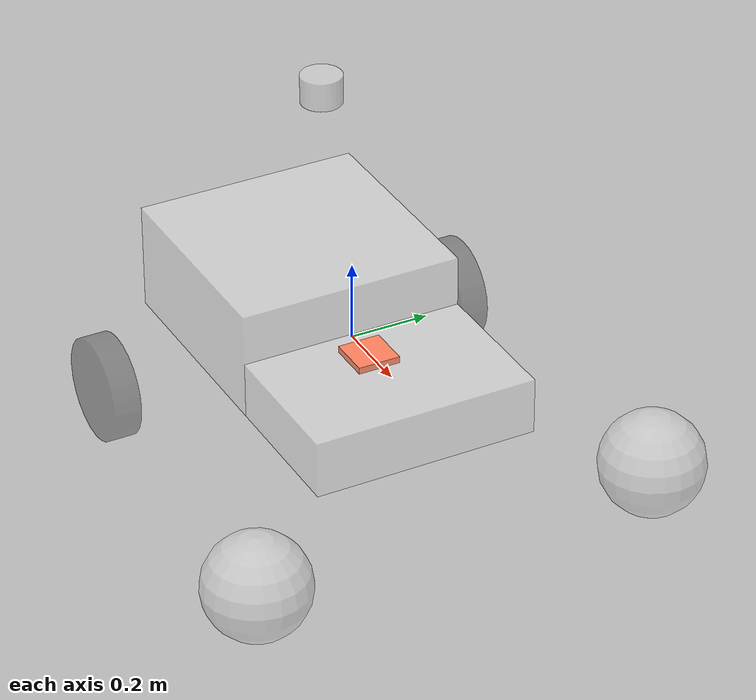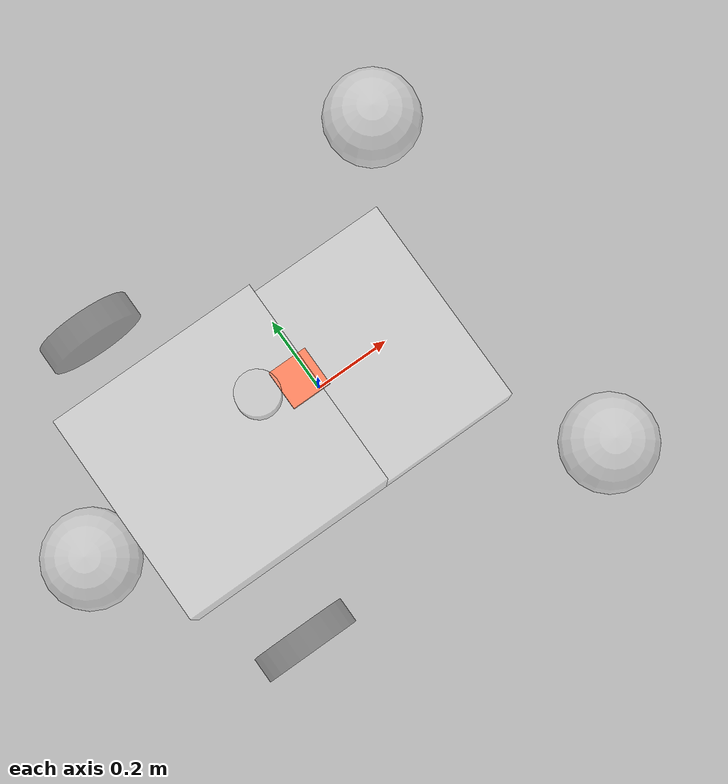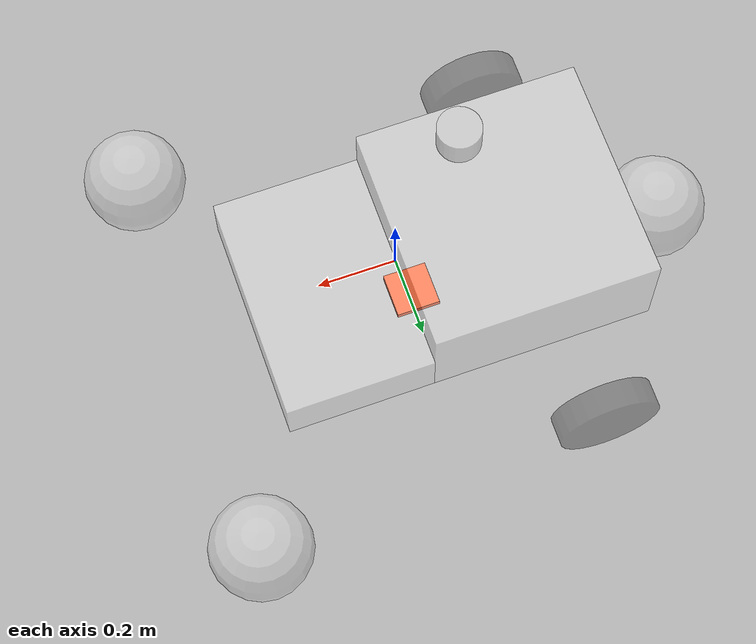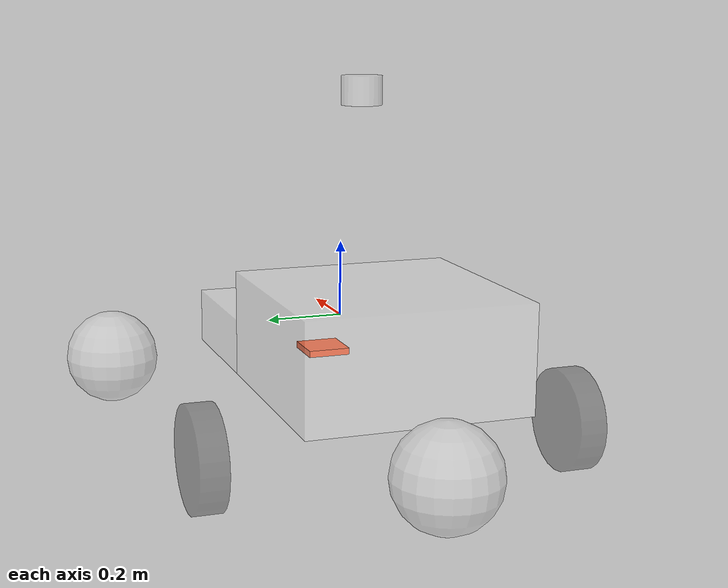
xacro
<?xml version="1.0"?>
<robot xmlns:xacro="http://www.ros.org/wiki/xacro" name="esda">

    <xacro:include filename="util/inertial_macros.xacro"/>

    <xacro:include filename="util/materials.xacro"/>

    <xacro:include filename="esda_core.xacro"/>

    <xacro:include filename="wheels.xacro"/>

    <xacro:include filename="sensors/lidar.xacro"/>

    <xacro:include filename="sensors/piksi.xacro"/>

    <xacro:include filename="sensors/camera.xacro"/>

    <gazebo>
        <plugin name="diff_drive" filename="libgazebo_ros_diff_drive.so">

            <!-- Wheel Information -->
            <left_joint>left_drive_wheel_joint</left_joint>
            <right_joint>right_drive_wheel_joint</right_joint>
            <wheel_separation>0.958</wheel_separation>
            <wheel_diameter>0.265</wheel_diameter>

            <!-- Limits -->
            <max_wheel_torque>100</max_wheel_torque>
            <max_wheel_acceleration>10.0</max_wheel_acceleration>

            <!-- Output -->
            <odometry_frame>odom</odometry_frame>
            <robot_base_frame>base_link</robot_base_frame>

            <publish_odom>true</publish_odom>
            <publish_odom_tf>true</publish_odom_tf>
            <publish_wheel_tf>true</publish_wheel_tf>

        </plugin>
    </gazebo>

</robot>

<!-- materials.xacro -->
<robot xmlns:xacro="http://www.ros.org/wiki/xacro">
    <!-- RANDOM COLOURS FOR DEBUG PURPOSES -->
    <material name="white">
        <color rgba="1 1 1 0.3"/>
    </material>

    <material name="light_grey">
        <color rgba="0.9 0.9 0.9 0.4"/>
    </material>

    <material name="black">
        <color rgba="0.2 0.2 0.2 0.4"/>
    </material>

    <material name="blue">
        <color rgba="0.2 0.2 1 1"/>
    </material>

    <material name="orange">
        <color rgba="1 0.3 0.1 1"/>
    </material>

</robot>

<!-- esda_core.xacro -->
<robot xmlns:xacro="http://www.ros.org/wiki/xacro">

    <!-- ROOT LINK
         the datum point/point of reference and point that
         everything ultimately connects to
    -->
    <link name="base_link"></link>

    <!-- base_footprint is a child but of base_link but
         has the same position as its needed for SLAM toolbox
    -->
    <link name="base_footprint"></link>

    <joint name="base_footprint_joint" type="fixed">
        <parent link="base_link"/>
        <child link="base_footprint"/>
        <origin xyz="0 0 0"/>
    </joint>

    <!-- BODY LINKS
         these define the body of the ESDA which is simplified
         as a series of boxes
    -->
    <!-- DRIVE BOX LINK -->
    <xacro:property name="drive_box_x" value="0.5725"/>
    <xacro:property name="drive_box_y" value="0.575"/>
    <xacro:property name="drive_box_z" value="0.276"/>
    <xacro:property name="drive_box_m" value="5"/>

    <link name="drive_box">
        <visual>
            <geometry>
                <box size="${drive_box_x} ${drive_box_y} ${drive_box_z}" />
            </geometry>
            <material name="white"/>
        </visual>

        <collision>
            <geometry>
                <box size="${drive_box_x} ${drive_box_y} ${drive_box_z}" />
            </geometry>
            <material name="white"/>
        </collision>

        <xacro:inertial_box mass="${drive_box_m}" x="${drive_box_x}" y="${drive_box_y}" z="${drive_box_z}">
            <origin xyz="0 0 0" rpy="0 0 0"/>
        </xacro:inertial_box>
    </link>

    <joint name="drive_box_joint" type="fixed">
        <parent link="base_link"/>
        <child link="drive_box"/>
        <origin xyz="-${drive_box_x/2} 0 0"/>
    </joint>

    <!-- STEERING BOX LINK -->
    <xacro:property name="steer_box_x" value="0.378"/>
    <xacro:property name="steer_box_y" value="0.575"/>
    <xacro:property name="steer_box_z" value="0.146"/>
    <xacro:property name="steer_box_m" value="5"/>

    <link name="steering_box">
        <visual>
            <geometry>
                <box size="${steer_box_x} ${steer_box_y} ${steer_box_z}" />
            </geometry>
            <material name="white"/>
        </visual>

        <collision>
            <geometry>
                <box size="${steer_box_x} ${steer_box_y} ${steer_box_z}" />
            </geometry>
            <material name="white"/>
        </collision>

        <xacro:inertial_box mass="${steer_box_m}" x="${steer_box_x}" y="${steer_box_y}" z="${steer_box_z}">
            <origin xyz="0 0 0" rpy="0 0 0"/>
        </xacro:inertial_box>
    </link>

    <joint name="steering_box_joint" type="fixed">
        <parent link="base_link"/>
        <child link="steering_box"/>
        <origin xyz="${steer_box_x/2} 0 -${drive_box_z/2-steer_box_z/2}"/>
    </joint>

</robot>

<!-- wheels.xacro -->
<robot xmlns:xacro="http://www.ros.org/wiki/xacro">

    <xacro:property name="wheel_rad" value="0.1325"/>
    <xacro:property name="wheel_len" value="0.07"/>
    <xacro:property name="wheel_mass" value="2"/>

    <xacro:include filename="drive_wheels.xacro"/>

    <xacro:include filename="caster_wheels.xacro"/>

    <!-- Adding colours to wheels for gazebo -->
    <gazebo reference="left_drive_wheel">
        <material>Gazebo/Black</material>
    </gazebo>
    <gazebo reference="right_drive_wheel">
        <material>Gazebo/Black</material>
    </gazebo>
    <gazebo reference="left_caster_wheel">
        <material>Gazebo/Black</material>
    </gazebo>
    <gazebo reference="right_caster_wheel">
        <material>Gazebo/Black</material>
    </gazebo>

</robot>

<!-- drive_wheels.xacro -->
<robot xmlns:xacro="http://www.ros.org/wiki/xacro">
    <!-- DRIVE WHEELS
         Defines the 2 rear drive wheels that provide motion in the x-axis (forward motion).
    -->
    <xacro:property name="drive_wheel_x_off" value="0.38724"/>
    <xacro:property name="drive_wheel_y_off" value="0.48166"/>
    <xacro:property name="drive_wheel_z_off" value="0.22"/>

    <link name="right_drive_wheel">
        <visual>
            <geometry>
                <cylinder radius="${wheel_rad}" length="${wheel_len}"/>
            </geometry>
            <material name="black"/>
        </visual>

        <collision>
            <geometry>
                <cylinder radius="${wheel_rad}" length="${wheel_len}"/>
            </geometry>
            <material name="black"/>
        </collision>

        <xacro:inertial_cylinder mass="${wheel_mass}" length="${wheel_len}" radius="${wheel_rad}">
            <origin xyz="0 0 0" rpy="0 0 0"/>
        </xacro:inertial_cylinder>
    </link>

    <joint name="right_drive_wheel_joint" type="continuous">
        <parent link="base_link"/>
        <child link="right_drive_wheel"/>
        <origin xyz="-${drive_wheel_x_off} -${drive_wheel_y_off} -${drive_wheel_z_off}" rpy="${pi/2} 0 0 "/>
        <axis xyz="0 0 -1"/>
    </joint>

    <link name="left_drive_wheel">
        <visual>
            <geometry>
                <cylinder radius="${wheel_rad}" length="${wheel_len}"/>
            </geometry>
            <material name="black"/>
        </visual>

        <collision>
            <geometry>
                <cylinder radius="${wheel_rad}" length="${wheel_len}"/>
            </geometry>
            <material name="black"/>
        </collision>

        <xacro:inertial_cylinder mass="${wheel_mass}" length="${wheel_len}" radius="${wheel_rad}">
            <origin xyz="0 0 0" rpy="0 0 0"/>
        </xacro:inertial_cylinder>
    </link>

    <joint name="left_drive_wheel_joint" type="continuous">
        <parent link="base_link"/>
        <child link="left_drive_wheel"/>
        <origin xyz="-${drive_wheel_x_off} ${drive_wheel_y_off} -${drive_wheel_z_off}" rpy="-${pi/2} 0 0 "/>
        <axis xyz="0 0 1"/>
    </joint>

</robot>

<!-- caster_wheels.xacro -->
<robot xmlns:xacro="http://www.ros.org/wiki/xacro">
    <!-- STEERING WHEELS
         Define the 2 front steering wheels that will turn the ESDA.
    -->
    <xacro:property name="caster_x" value="0.235"/>
    <xacro:property name="caster_y" value="0.52297"/>
    <xacro:property name="caster_x_off" value="0.3"/> <!-- offset on top of original x -->
    <xacro:property name="caster_z" value="0.208"/>
    <xacro:property name="caster_m" value="0.05"/>

    <!-- Define the component that will turn around z-axis which the wheels will attach to -->
    <link name="right_caster">
        <visual>
            <geometry>
                <sphere radius="${wheel_rad}"/>
            </geometry>
            <material name="light_grey"/>
        </visual>

        <collision>
            <geometry>
                <sphere radius="${wheel_rad}"/>
            </geometry>
            <material name="light_grey"/>
        </collision>

        <xacro:inertial_sphere mass="${caster_m}" radius="${wheel_rad}">
            <origin xyz="0 0 0" rpy="0 0 0"/>
        </xacro:inertial_sphere>
    </link>

    <link name="left_caster">
        <visual>
            <geometry>
                <sphere radius="${wheel_rad}"/>
            </geometry>
            <material name="light_grey"/>
        </visual>

        <collision>
            <geometry>
                <sphere radius="${wheel_rad}"/>
            </geometry>
            <material name="light_grey"/>
        </collision>

        <xacro:inertial_sphere mass="${caster_m}" radius="${wheel_rad}">
            <origin xyz="0 0 0" rpy="0 0 0"/>
        </xacro:inertial_sphere>
    </link>

    <link name="back_caster">
        <visual>
            <geometry>
                <sphere radius="${wheel_rad}"/>
            </geometry>
            <material name="light_grey"/>
        </visual>

        <collision>
            <geometry>
                <sphere radius="${wheel_rad}"/>
            </geometry>
            <material name="light_grey"/>
        </collision>

        <xacro:inertial_sphere mass="${caster_m}" radius="${wheel_rad}">
            <origin xyz="0 0 0" rpy="0 0 0"/>
        </xacro:inertial_sphere>
    </link>

    <joint name="right_caster_joint" type="fixed">
        <parent link="base_link"/>
        <child link="right_caster"/>
        <origin xyz="${caster_x + caster_x_off} -${caster_y} -${caster_z}" rpy="0 0 0 "/>
    </joint>

    <joint name="left_caster_joint" type="fixed">
        <parent link="base_link"/>
        <child link="left_caster"/>
        <origin xyz="${caster_x + caster_x_off} ${caster_y} -${caster_z}" rpy="0 0 0 "/>
    </joint>

    <joint name="back_caster_joint" type="fixed">
        <parent link="base_link"/>
        <child link="back_caster"/>
        <origin xyz="-${caster_x/0.33} 0 -${caster_z}" rpy="0 0 0 "/>
    </joint>
</robot>

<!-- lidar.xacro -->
<robot xmlns:xacro="http://www.ros.org/wiki/xacro" name="VLP-16">
    <xacro:property name="M_PI" value="3.1415926535897931" />
    <xacro:property name="name" value="velodyne" />
    <xacro:property name="parent" value="base_link" />

    <xacro:property name="radius" value="0.0516" /> <!-- measured 50.5mm -->
    <xacro:property name="height" value="0.0717" /> <!-- measured 72.8mm | top 14mm, mid 38.8mm, bottom 19mm-->
    <xacro:property name="x" value="-0.149" />
    <xacro:property name="y" value="0" />
    <xacro:property name="z" value="0.5707" />

    <joint name="${name}_base_mount_joint" type="fixed">
        <origin xyz="${x} ${y} ${z}" rpy="0 0 0" />
        <parent link="${parent}"/>
        <child link="${name}_base_link"/>
    </joint>

    <link name="${name}_base_link">
        <inertial>
        <mass value="0.83"/>
        <origin xyz="0 0 0.03585"/>
        <inertia
            ixx="${(0.83 * (3.0*0.0516*0.0516 + 0.0717*0.0717)) / 12.0}" ixy="0" ixz="0"
            iyy="${(0.83 * (3.0*0.0516*0.0516 + 0.0717*0.0717)) / 12.0}" iyz="0"
            izz="${0.5 * 0.83 * (0.0516*0.0516)}"/>
        </inertial>

        <visual>
            <origin rpy="0 0 0" xyz="0 0 0.03585"/>
            <geometry>
                <cylinder radius="${radius}" length="${height}"/>
            </geometry>
            <material name="light_grey"/>
        </visual>

        <collision>
            <origin rpy="0 0 0" xyz="0 0 0.03585"/>
            <geometry>
                <cylinder radius="${radius}" length="${height}"/>
            </geometry>
        </collision>
    </link>

    <joint name="${name}_base_scan_joint" type="fixed" >
        <origin xyz="0 0 0.0377" rpy="0 0 0" />
        <parent link="${name}_base_link" />
        <child link="${name}"/>
    </joint>

    <link name="${name}">
	    <inertial>
	        <mass value="0.01"/>
	        <origin xyz="0 0 0"/>
	        <inertia ixx="1e-7" ixy="0" ixz="0" iyy="1e-7" iyz="0" izz="1e-7"/>
	    </inertial>
    </link>

    <gazebo reference="velodyne_base_link">
        <material>Gazebo/Grey</material>

        <sensor name="laser" type="ray">
            <pose> 0 0 0 0 0 0 </pose>
            <visualize>false</visualize>
            <update_rate>10</update_rate>

            <ray>
                <scan>
                    <horizontal>
                        <samples>360</samples>
                        <min_angle>-3.14</min_angle>
                        <max_angle>3.14</max_angle>
                    </horizontal>
                    <vertical>
                        <samples>10</samples>
                        <min_angle>-0.2</min_angle>
                        <max_angle>0</max_angle>
                    </vertical>
                </scan>
                <range>
                    <min>0.3</min>
                    <max>4.5</max>
                </range>
            </ray>

            <plugin name="laser_controller" filename="libgazebo_ros_ray_sensor.so">
                <ros>
                    <argument>~/out:=velodyne_points</argument>
                </ros>
                <output_type>sensor_msgs/PointCloud2</output_type>
                <frame_name>velodyne</frame_name>
            </plugin>
        </sensor>
    </gazebo>

</robot>

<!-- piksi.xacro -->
<robot xmlns:xacro="http://www.ros.org/wiki/xacro">

    <xacro:property name="width" value="0.11"/>
    <xacro:property name="height" value="0.017"/>

    <xacro:property name="x" value="-0.0223"/>
    <xacro:property name="y" value="0.0563"/>
    <xacro:property name="z" value="-0.0804"/>

    <!-- verify that the X and Y dimensions are placed in the right axis
    -->
    <link name="swiftnav-gnss">
        <visual>
            <geometry>
                <box size="${width} ${width} ${height}"/>
            </geometry>
            <material name="orange"/>
        </visual>

        <collision>
            <geometry>
                <box size="${width} ${width} ${height}"/>
            </geometry>
            <material name="orange"/>
        </collision>

        <xacro:inertial_box mass="0" x="${width}" y="${width}" z="${height}">
            <origin xyz="0 0 0" rpy="0 0 0"/>
        </xacro:inertial_box>
    </link>

    <joint name="swiftnav_joint" type="fixed">
        <parent link="base_link"/>
        <child link="swiftnav-gnss"/>
        <origin xyz="${x} ${y} ${z}" rpy="0 0 0"/>
    </joint>

    <!-- Obtained from https://medium.com/@bytesrobotics/a-review-of-the-ros2-urdf-gazebo-sensor-91e947c633d7 -->
    <gazebo reference="swiftnav-gnss">
        <sensor name="gps" type="gps">
            <always_on>true</always_on>
            <update_rate>1.0</update_rate>
            <plugin name="gps_controller" filename="libgazebo_ros_gps_sensor.so">
                <ros>
                    <remapping>gps_controller/out:=navsatfix</remapping>
                </ros>
                <frame_name>piksi</frame_name>
            </plugin>
        </sensor>
        <material>Gazebo/Grey</material>
    </gazebo>

    <gazebo reference="swiftnav-gnss">
        <sensor name="imu" type="imu">
            <always_on>true</always_on>
            <update_rate>100</update_rate>
            <imu>
            <angular_velocity>
                <x>
                <noise type="gaussian">
                    <mean>0.0</mean>
                    <stddev>2e-4</stddev>
                </noise>
                </x>
                <y>
                <noise type="gaussian">
                    <mean>0.0</mean>
                    <stddev>2e-4</stddev>
                </noise>
                </y>
                <z>
                <noise type="gaussian">
                    <mean>0.0</mean>
                    <stddev>2e-4</stddev>
                </noise>
                </z>
            </angular_velocity>
            <linear_acceleration>
                <x>
                <noise type="gaussian">
                    <mean>0.0</mean>
                    <stddev>1.7e-2</stddev>
                </noise>
                </x>
                <y>
                <noise type="gaussian">
                    <mean>0.0</mean>
                    <stddev>1.7e-2</stddev>
                </noise>
                </y>
                <z>
                <noise type="gaussian">
                    <mean>0.0</mean>
                    <stddev>1.7e-2</stddev>
                </noise>
                </z>
            </linear_acceleration>
            </imu>
            <plugin name="bytes_imu" filename="libgazebo_ros_imu_sensor.so">
                <ros>
                    <remapping>~/out:=imu</remapping>
                </ros>
                <initial_orientation_as_reference>false</initial_orientation_as_reference>
            </plugin>
        </sensor>
    </gazebo>
</robot>

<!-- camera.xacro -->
<robot name="esda" xmlns:xacro="http://ros.org/wiki/xacro">
  <link name="zed_camera_link">

  </link>

  <joint name="zed_to_baselink" type="fixed">
      <parent link="base_link"/>
      <child link="zed_camera_link"/>
      <origin xyz="0.271364 0.0 0.243727" rpy="0 0.646 0" />
  </joint>
</robot>
